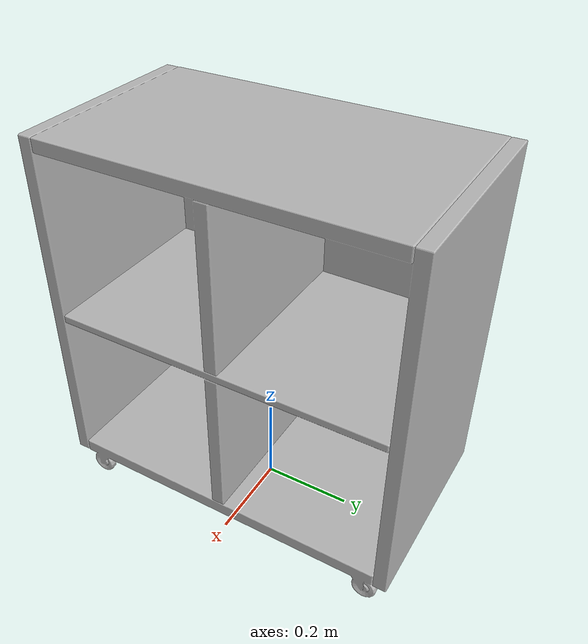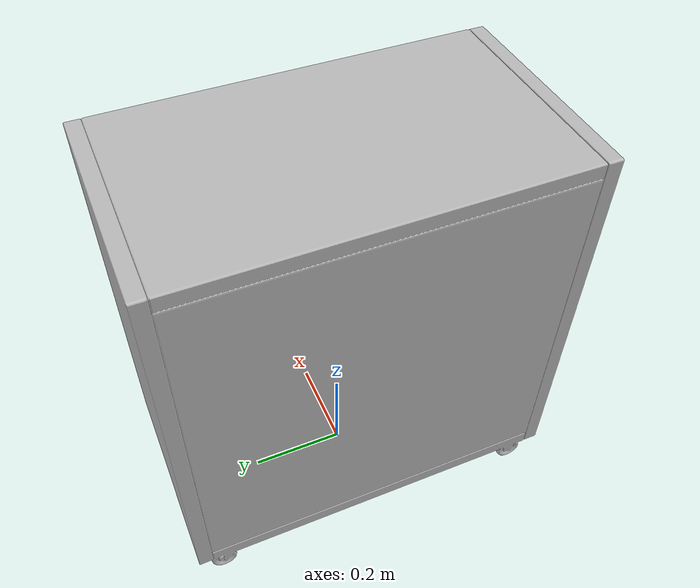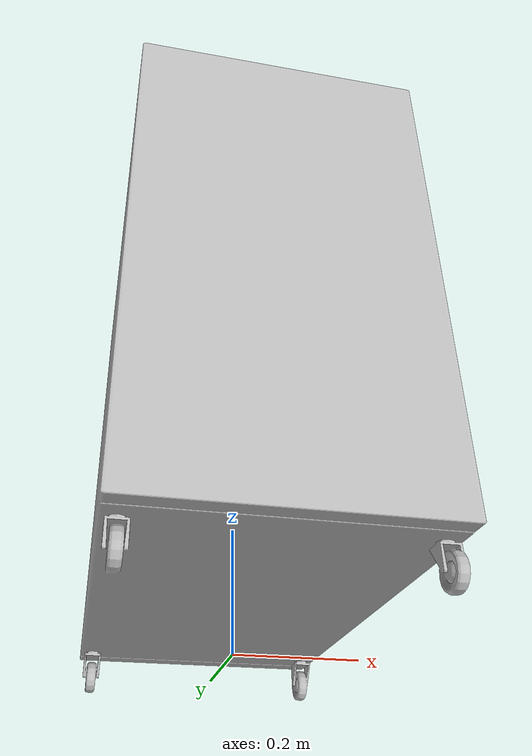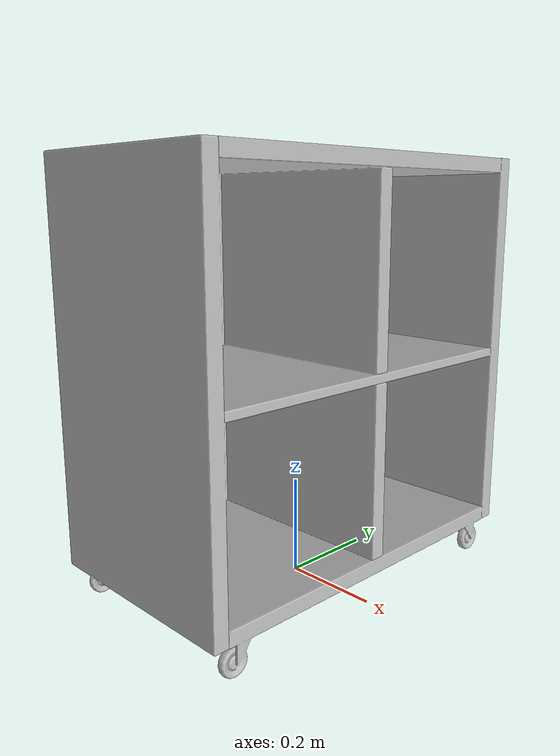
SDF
<?xml version='1.0'?>
<sdf version='1.4'>
  <model name='513'>
    <pose>0 0 0 0 0 0</pose>
    <static>true</static>
    <link name='link'>
      <collision name='collision'>
        <pose>0 0 0 0 0 0</pose>
        <geometry>
          <box>
            <size>0.449988 0.799842 2</size>
          </box>
        </geometry>
      </collision>
      <visual name='visual'>
        <pose>0 0 0 0 0 0</pose>
        <geometry>
          <mesh><uri>model://513/513.dae</uri></mesh>
        </geometry>
      </visual>
    </link>
  </model>
</sdf>
